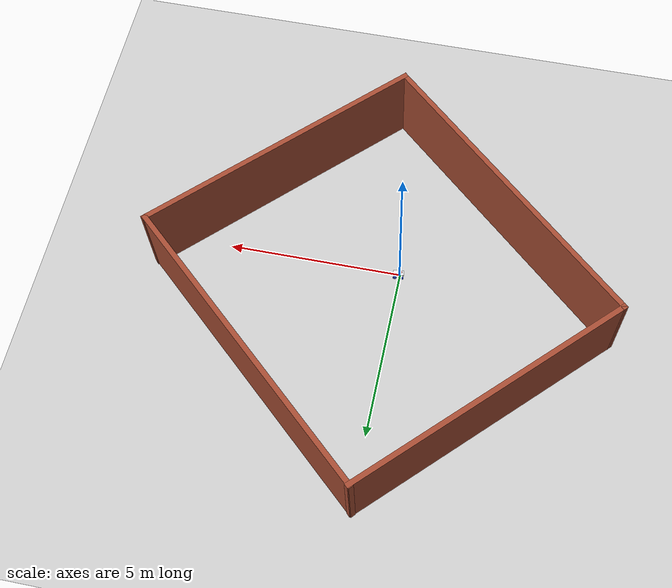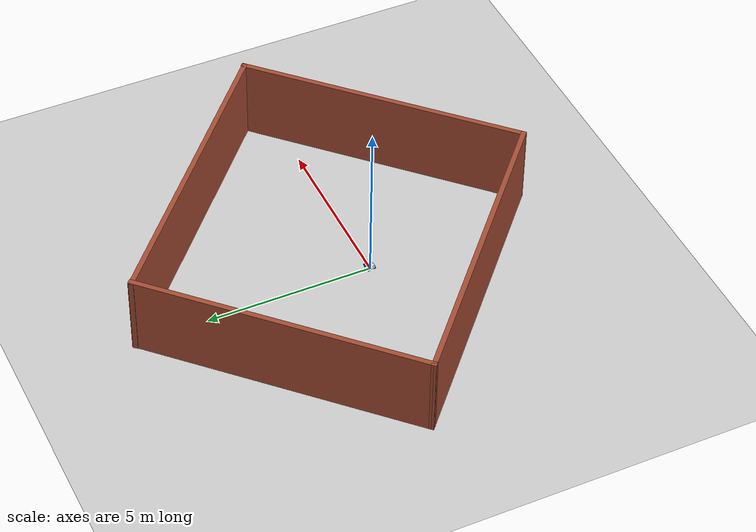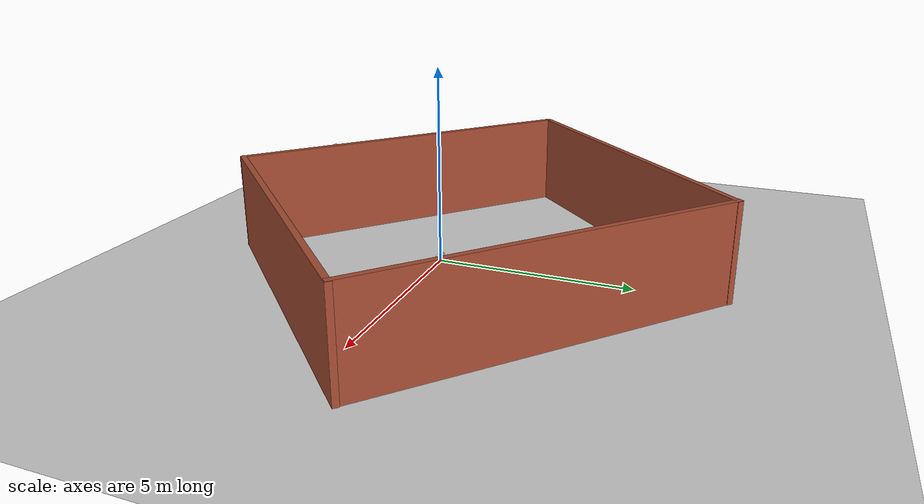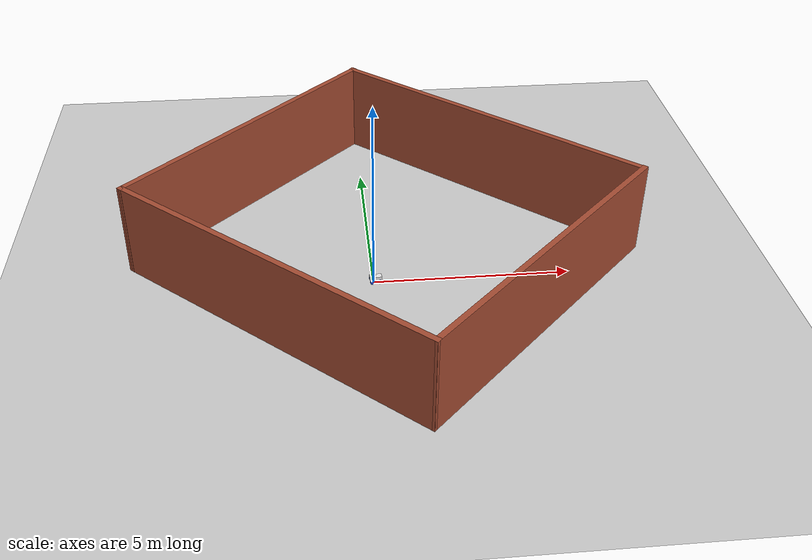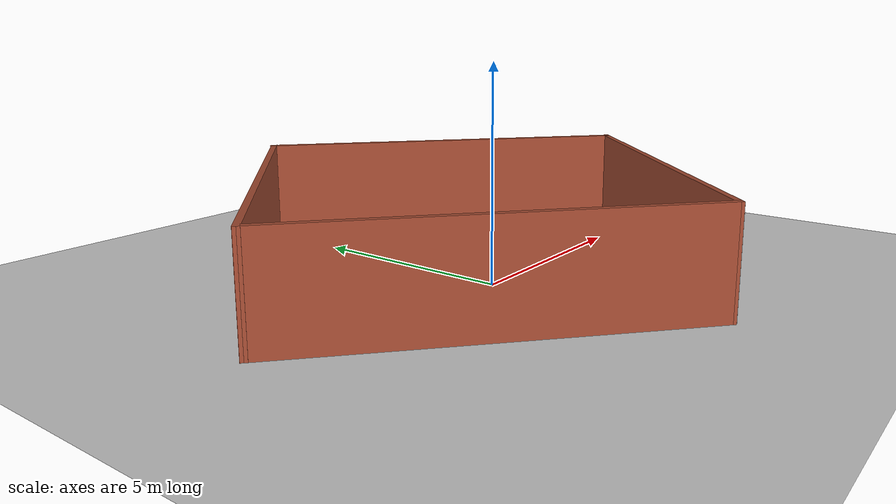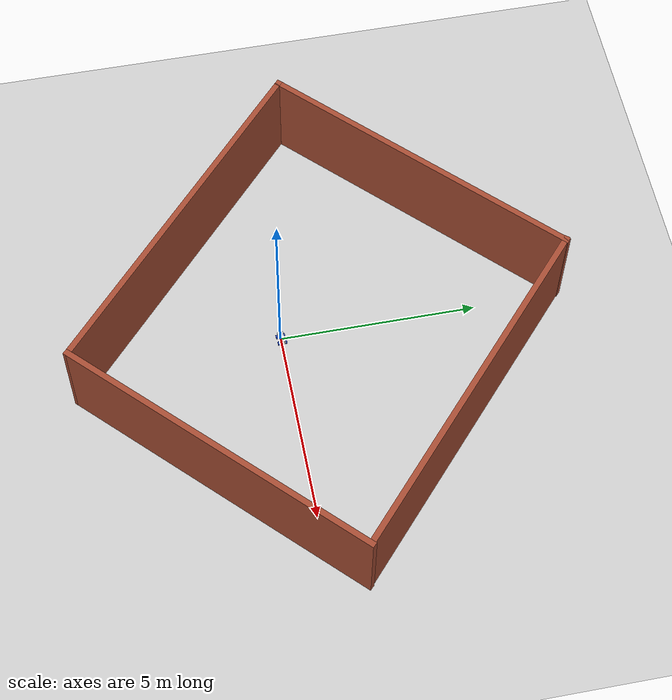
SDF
<sdf version="1.7">
 <world name="default">
  <light name="sun" type="directional">
   <pose>0 0 10 0 -0 0</pose>
   <diffuse>0.8 0.8 0.8 1</diffuse>
   <specular>0.2 0.2 0.2 1</specular>
   <attenuation>
    <range>1000</range>
    <constant>0.9</constant>
    <linear>0.01</linear>
    <quadratic>0.001</quadratic>
   </attenuation>
   <direction>-0.5 0.1 -0.9</direction>
   <spot><inner_angle>0</inner_angle><outer_angle>0</outer_angle><falloff>0</falloff></spot>
  </light>
  <model name="ground_plane">
   <static>1</static>
   <link name="link">
    <collision name="collision">
     <geometry><plane><normal>0 0 1</normal><size>100 100</size></plane></geometry>
     <surface>
      <contact><collide_bitmask>65535</collide_bitmask></contact>
      <friction><ode><mu>100</mu><mu2>50</mu2></ode></friction>
     </surface>
    </collision>
    <visual name="visual">
     <cast_shadows>0</cast_shadows>
     <geometry><plane><normal>0 0 1</normal><size>100 100</size></plane></geometry>
     <material>
      <script><uri>file://media/materials/scripts/gazebo.material</uri><name>Gazebo/Grey</name></script>
     </material>
    </visual>
   </link>
  </model>
  <gravity>0 0 -9.8</gravity>
  <magnetic_field>6e-06 2.3e-05 -4.2e-05</magnetic_field>
  <atmosphere type="adiabatic"/>
  <physics type="ode">
   <max_step_size>0.001</max_step_size>
   <real_time_factor>1</real_time_factor>
   <real_time_update_rate>1000</real_time_update_rate>
  </physics>
  <scene><ambient>0.4 0.4 0.4 1</ambient><background>0.7 0.7 0.7 1</background><shadows>1</shadows></scene>
  <audio><device>default</device></audio>
  <spherical_coordinates>
   <surface_model>EARTH_WGS84</surface_model>
   <latitude_deg>0</latitude_deg>
   <longitude_deg>0</longitude_deg>
   <elevation>0</elevation>
   <heading_deg>0</heading_deg>
  </spherical_coordinates>
  <model name="my_bot">
   <link name="base_link">
    <inertial>
     <pose>0.01875 0 0.0675 0 -0 0</pose>
     <mass>0.8</mass>
     <inertia>
      <ixx>0.00536417</ixx>
      <ixy>0</ixy>
      <ixz>0.0018375</ixz>
      <iyy>0.00843875</iyy>
      <iyz>-1.39278e-20</iyz>
      <izz>0.00873792</izz>
     </inertia>
    </inertial>
    <collision name="base_link_fixed_joint_lump__chassis_collision">
     <pose>0 0 0.075 0 -0 0</pose>
     <geometry><box><size>0.3 0.15 0.12</size></box></geometry>
    </collision>
    <collision name="base_link_fixed_joint_lump__laser_frame_collision_1">
     <pose>-0.05 0 0.165 0 -0 0</pose>
     <geometry><cylinder><length>0.04</length><radius>0.05</radius></cylinder></geometry>
    </collision>
    <collision name="base_link_fixed_joint_lump__left_front_wheel_collision_2">
     <pose>0.1 0.095 0 -1.5708 0 0</pose>
     <geometry><cylinder><length>0.04</length><radius>0.05</radius></cylinder></geometry>
     <surface><friction><ode><mu>0.001</mu><mu2>0.002</mu2></ode></friction></surface>
    </collision>
    <collision name="base_link_fixed_joint_lump__right_front_wheel_collision_3">
     <pose>0.1 -0.095 0 1.5708 -0 0</pose>
     <geometry><cylinder><length>0.04</length><radius>0.05</radius></cylinder></geometry>
     <surface><friction><ode><mu>0.001</mu><mu2>0.002</mu2></ode></friction></surface>
    </collision>
    <visual name="base_link_fixed_joint_lump__chassis_visual">
     <pose>0 0 0.075 0 -0 0</pose>
     <geometry><box><size>0.3 0.15 0.12</size></box></geometry>
     <material>
      <script><name>Gazebo/White</name><uri>file://media/materials/scripts/gazebo.material</uri></script>
     </material>
    </visual>
    <visual name="base_link_fixed_joint_lump__laser_frame_visual_1">
     <pose>-0.05 0 0.165 0 -0 0</pose>
     <geometry><cylinder><length>0.04</length><radius>0.05</radius></cylinder></geometry>
     <material>
      <script><name>Gazebo/Red</name><uri>file://media/materials/scripts/gazebo.material</uri></script>
     </material>
    </visual>
    <visual name="base_link_fixed_joint_lump__left_front_wheel_visual_2">
     <pose>0.1 0.095 0 -1.5708 0 0</pose>
     <geometry><cylinder><length>0.04</length><radius>0.05</radius></cylinder></geometry>
     <material>
      <script><name>Gazebo/Blue</name><uri>file://media/materials/scripts/gazebo.material</uri></script>
     </material>
    </visual>
    <visual name="base_link_fixed_joint_lump__right_front_wheel_visual_3">
     <pose>0.1 -0.095 0 1.5708 -0 0</pose>
     <geometry><cylinder><length>0.04</length><radius>0.05</radius></cylinder></geometry>
     <material>
      <script><name>Gazebo/Blue</name><uri>file://media/materials/scripts/gazebo.material</uri></script>
     </material>
    </visual>
    <sensor name="laser" type="ray">
     <visualize>1</visualize>
     <update_rate>10</update_rate>
     <ray>
      <scan>
       <horizontal>
        <samples>360</samples>
        <min_angle>-3.14</min_angle>
        <max_angle>3.14</max_angle>
        <resolution>1</resolution>
       </horizontal>
       <vertical><samples>1</samples><min_angle>0</min_angle><max_angle>0</max_angle></vertical>
      </scan>
      <range><min>0.3</min><max>10</max></range>
     </ray>
     <plugin name="laser_controller" filename="libgazebo_ros_ray_sensor.so">
      <ros><argument>~/out:=scan</argument></ros>
      <output_type>sensor_msgs/LaserScan</output_type>
      <frame_name>laser_frame</frame_name>
     </plugin>
     <pose>-0.05 0 0.165 0 -0 0</pose>
    </sensor>
   </link>
   <joint name="left_back_wheel_joint" type="revolute">
    <pose relative_to="base_link">-0.1 0.095 0 -1.5708 0 0</pose>
    <parent>base_link</parent>
    <child>left_back_wheel</child>
    <axis>
     <xyz>0 0 1</xyz>
     <limit><lower>-1e+16</lower><upper>1e+16</upper></limit>
     <dynamics><spring_reference>0</spring_reference><spring_stiffness>0</spring_stiffness></dynamics>
    </axis>
   </joint>
   <link name="left_back_wheel">
    <pose relative_to="left_back_wheel_joint">0 0 0 0 -0 0</pose>
    <inertial>
     <mass>0.1</mass>
     <inertia>
      <ixx>7.58333e-05</ixx>
      <ixy>0</ixy>
      <ixz>0</ixz>
      <iyy>7.58333e-05</iyy>
      <iyz>0</iyz>
      <izz>0.000125</izz>
     </inertia>
    </inertial>
    <collision name="left_back_wheel_collision">
     <geometry><cylinder><length>0.04</length><radius>0.05</radius></cylinder></geometry>
    </collision>
    <visual name="left_back_wheel_visual">
     <geometry><cylinder><length>0.04</length><radius>0.05</radius></cylinder></geometry>
     <material>
      <script><name>Gazebo/Blue</name><uri>file://media/materials/scripts/gazebo.material</uri></script>
     </material>
    </visual>
   </link>
   <joint name="right_back_wheel_joint" type="revolute">
    <pose relative_to="base_link">-0.1 -0.095 0 1.5708 -0 0</pose>
    <parent>base_link</parent>
    <child>right_back_wheel</child>
    <axis>
     <xyz>0 0 -1</xyz>
     <limit><lower>-1e+16</lower><upper>1e+16</upper></limit>
     <dynamics><spring_reference>0</spring_reference><spring_stiffness>0</spring_stiffness></dynamics>
    </axis>
   </joint>
   <link name="right_back_wheel">
    <pose relative_to="right_back_wheel_joint">0 0 0 0 -0 0</pose>
    <inertial>
     <mass>0.1</mass>
     <inertia>
      <ixx>7.58333e-05</ixx>
      <ixy>0</ixy>
      <ixz>0</ixz>
      <iyy>7.58333e-05</iyy>
      <iyz>0</iyz>
      <izz>0.000125</izz>
     </inertia>
    </inertial>
    <collision name="right_back_wheel_collision">
     <geometry><cylinder><length>0.04</length><radius>0.05</radius></cylinder></geometry>
    </collision>
    <visual name="right_back_wheel_visual">
     <geometry><cylinder><length>0.04</length><radius>0.05</radius></cylinder></geometry>
     <material>
      <script><name>Gazebo/Blue</name><uri>file://media/materials/scripts/gazebo.material</uri></script>
     </material>
    </visual>
   </link>
   <static>0</static>
   <plugin name="diff_drive" filename="libgazebo_ros_diff_drive.so">
    <left_joint>left_back_wheel_joint</left_joint>
    <right_joint>right_back_wheel_joint</right_joint>
    <wheel_separation>0.19</wheel_separation>
    <wheel_diameter>0.05</wheel_diameter>
    <max_wheel_torque>200</max_wheel_torque>
    <max_wheel_acceleration>10.0</max_wheel_acceleration>
    <odometry_frame>odom</odometry_frame>
    <robot_base_frame>base_link</robot_base_frame>
    <publish_odom>1</publish_odom>
    <publish_odom_tf>1</publish_odom_tf>
    <publish_wheel_tf>1</publish_wheel_tf>
   </plugin>
   <pose>0.041221 0.008337 0.050001 -3e-06 3e-06 0.097762</pose>
  </model>
  <model name="World1">
   <pose>0.413876 0.974124 0 0 -0 0</pose>
   <link name="Wall_11">
    <collision name="Wall_11_Collision">
     <geometry><box><size>8.75 0.15 2.5</size></box></geometry>
     <pose>0 0 1.25 0 -0 0</pose>
    </collision>
    <visual name="Wall_11_Visual">
     <pose>0 0 1.25 0 -0 0</pose>
     <geometry><box><size>8.75 0.15 2.5</size></box></geometry>
     <material>
      <script><uri>file://media/materials/scripts/gazebo.material</uri><name>Gazebo/Bricks</name></script>
      <ambient>1 1 1 1</ambient>
     </material>
     <meta><layer>0</layer></meta>
    </visual>
    <pose>-3.49389 3.1368 0 0 -0 0.785398</pose>
   </link>
   <link name="Wall_12">
    <collision name="Wall_12_Collision">
     <geometry><box><size>9.5408 0.15 2.5</size></box></geometry>
     <pose>0 0 1.25 0 -0 0</pose>
    </collision>
    <visual name="Wall_12_Visual">
     <pose>0 0 1.25 0 -0 0</pose>
     <geometry><box><size>9.5408 0.15 2.5</size></box></geometry>
     <material>
      <script><uri>file://media/materials/scripts/gazebo.material</uri><name>Gazebo/Bricks</name></script>
      <ambient>1 1 1 1</ambient>
     </material>
     <meta><layer>0</layer></meta>
    </visual>
    <pose>3.01396 3.04056 0 0 -0 -0.731597</pose>
   </link>
   <link name="Wall_17">
    <collision name="Wall_17_Collision">
     <geometry><box><size>9.5408 0.15 2.5</size></box></geometry>
     <pose>0 0 1.25 0 -0 0</pose>
    </collision>
    <visual name="Wall_17_Visual">
     <pose>0 0 1.25 0 -0 0</pose>
     <geometry><box><size>9.5408 0.15 2.5</size></box></geometry>
     <material>
      <script><uri>file://media/materials/scripts/gazebo.material</uri><name>Gazebo/Bricks</name></script>
      <ambient>1 1 1 1</ambient>
     </material>
     <meta><layer>0</layer></meta>
    </visual>
    <pose>-3.04056 -3.04056 0 0 -0 -0.731597</pose>
   </link>
   <link name="Wall_19">
    <collision name="Wall_19_Collision">
     <geometry><box><size>8.75 0.15 2.5</size></box></geometry>
     <pose>0 0 1.25 0 -0 0</pose>
    </collision>
    <visual name="Wall_19_Visual">
     <pose>0 0 1.25 0 -0 0</pose>
     <geometry><box><size>8.75 0.15 2.5</size></box></geometry>
     <material>
      <script><uri>file://media/materials/scripts/gazebo.material</uri><name>Gazebo/Bricks</name></script>
      <ambient>1 1 1 1</ambient>
     </material>
     <meta><layer>0</layer></meta>
    </visual>
    <pose>3.49389 -3.1368 0 0 -0 0.785398</pose>
   </link>
   <static>1</static>
  </model>
 </world>
</sdf>
